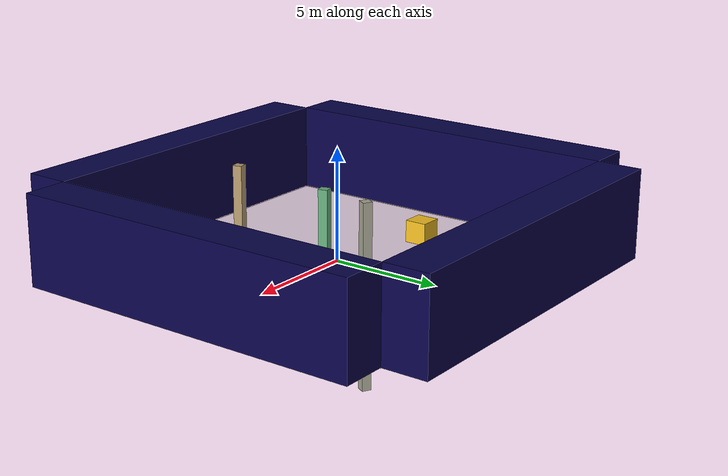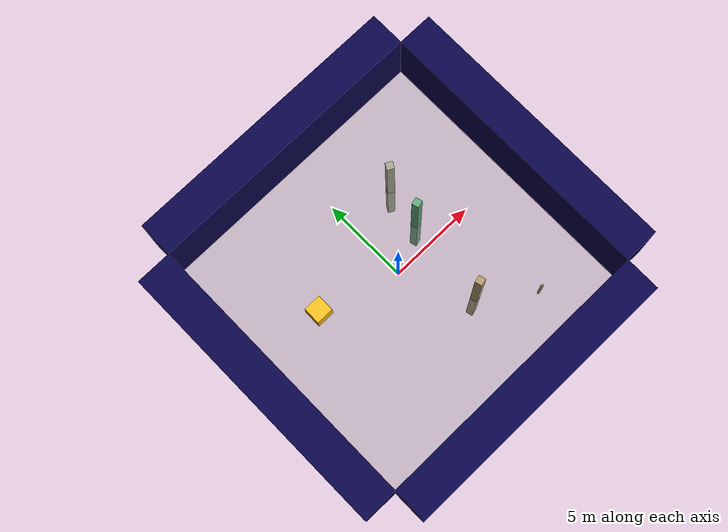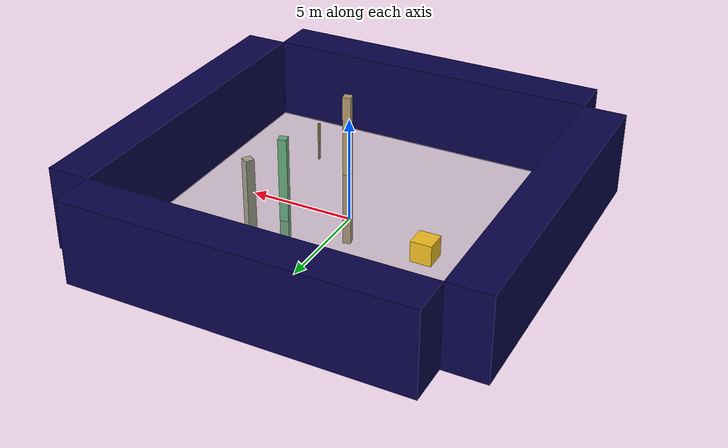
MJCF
<mujoco model="unnamed_model">
  <default>
    <default class="/" />
    <default class="border/" />
    <default class="border_1/" />
    <default class="border_2/" />
    <default class="border_3/" />
    <default class="light/" />
    <default class="agent/" />
    <default class="apple0/" />
    <default class="apple1/" />
    <default class="stone/" />
    <default class="stone_1/" />
  </default>
  <worldbody>
    <body name="border/">
      <body name="border/border" pos="0 9 2">
        <geom name="border/border_geom" class="border/" type="box" size="8.0 1.0 2.0" rgba="0.035 0.016 0.29 1.0" />
      </body>
    </body>
    <body name="border_1/">
      <body name="border_1/border" pos="0 -9 2">
        <geom name="border_1/border_geom" class="border_1/" type="box" size="8.0 1.0 2.0" rgba="0.035 0.016 0.29 1.0" />
      </body>
    </body>
    <body name="border_2/">
      <body name="border_2/border" pos="9 0 2">
        <geom name="border_2/border_geom" class="border_2/" type="box" size="1.0 8.0 2.0" rgba="0.035 0.016 0.29 1.0" />
      </body>
    </body>
    <body name="border_3/">
      <body name="border_3/border" pos="-9 0 2">
        <geom name="border_3/border_geom" class="border_3/" type="box" size="1.0 8.0 2.0" rgba="0.035 0.016 0.29 1.0" />
      </body>
    </body>
    <body name="light/">
      <body name="light/light" pos="0 0 15">
        <geom name="light/light_geom" class="light/" size="0.5" rgba="1.0 1.0 1.0 0.0" />
        <light name="light//unnamed_light_0" class="light/" />
      </body>
    </body>
    <body euler="0 0 270.04698496938437" name="agent/" pos="-4.3727499999999999 1.3750999999999998 0.5">
      <joint name="agent/boxagent_freeJoint/" class="/" type="free" />
      <body name="agent/agent" pos="0 0 0" euler="0 0 0">
        <geom name="agent/boxagent_geom" class="agent/" type="box" size="0.5 0.5 0.5" rgba="0.949 0.7451 0.1333 1.0" euler="0 0 0" />
        <camera name="agent/boxagent_camera" class="agent/" pos="0 -0.59999999999999998 0" euler="90 0 0" />
      </body>
    </body>
    <body name="apple0/">
      <body name="apple0/apple0" pos="2.0262000000000002 -3.6859000000000002 0.10000000000000001" euler="0 0 -166.35750983223454">
        <geom name="apple0/apple_geom" class="apple0/" type="box" size="0.2 0.2 4.0" rgba="0.6980392156862745 0.6 0.43137254901960786 1.0" />
      </body>
    </body>
    <body name="apple1/">
      <body name="apple1/apple1" pos="2.94285 3.6216000000000008 0.10000000000000001" euler="0 0 150.79337953041642">
        <geom name="apple1/apple_geom" class="apple1/" type="box" size="0.2 0.2 4.0" rgba="0.6470588235294118 0.6392156862745098 0.5686274509803921 1.0" />
      </body>
    </body>
    <body name="stone/">
      <body name="stone/stone" pos="2.5867500000000003 1.3079000000000001 0.10000000000000001" euler="0 0 -74.713721102789378">
        <geom name="stone/stone_geom" class="stone/" type="box" size="0.2 0.2 4.0" rgba="0.396078431372549 0.6705882352941176 0.48627450980392156 1.0" />
      </body>
    </body>
    <body name="stone_1/">
      <body name="stone_1/stone" pos="4.7360499999999996 -5.7736999999999998 0.10000000000000001" euler="0 0 63.401908075000478">
        <geom name="stone_1/stone_geom" class="stone_1/" type="box" size="0.05 0.05 1.0" rgba="0.6980392156862745 0.6 0.43137254901960786 1.0" />
      </body>
    </body>
    <geom name="base_plane" class="/" type="plane" size="8 8 0.10000000000000001" />
  </worldbody>
</mujoco>
